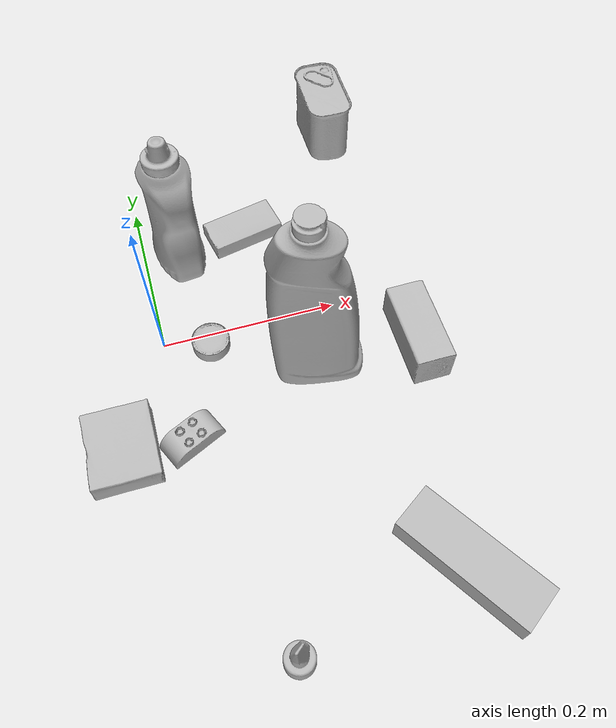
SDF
<sdf version="1.4">
  <world name="default">
    <light name="light1" type="point">
      <pose>0 0 1 0 0 0</pose>
      <diffuse>3 3 3 1</diffuse>
      <specular>3 3 3 1</specular>
    </light>
    <light name="light2" type="point">
      <pose>0 0.5 2 0 0 0</pose>
      <diffuse>1 1 1 1</diffuse>
      <specular>1 1 1 1</specular>
    </light>
    <light name="light3" type="point">
      <pose>0 0.5 2 0 0 0</pose>
      <diffuse>3 3 3 1</diffuse>
      <specular>3 3 3 1</specular>
    </light>
    <scene>
      <ambient>0.7 0.7 0.7</ambient>
    </scene>
    <model name="bottle1">
      <link name="link_bottle1">
        <collision name="default">
          <geometry>
            <mesh>
              <uri>model://bleach_cleanser/collision_meshes/collision.obj</uri>
              <scale>1.0 1.0 1.0</scale>
            </mesh>
          </geometry>
          <surface>
            <friction>
              <ode>
                <mu>0.5</mu>
                <mu2>0.5</mu2>
              </ode>
            </friction>
          <contact>
        <ode>
            <max_vel>0</max_vel>
            <min_depth>0.0001</min_depth>
            <kp>1e8</kp>
        </ode>
    </contact></surface>
        </collision>
        <visual name="default">
          <geometry>
            <mesh>
              <uri>model://bleach_cleanser/visual_meshes/visual.dae</uri>
              <scale>1.0 1.0 1.0</scale>
            </mesh>
          </geometry>
        </visual>
        <inertial>
          <mass>0.5324875712394714</mass>
          <pose>0.00012193183647468686 0.0037838825955986977 -0.024421609938144684 -0.07381669869164166 0.0004201168944593395 -0.0068750469260774934</pose>
          <inertia>
            <ixx>0.0025916947</ixx>
            <iyy>0.0024150796</iyy>
            <izz>0.00044311245</izz>
            <ixy>0</ixy>
            <ixz>0</ixz>
            <iyz>0</iyz>
          </inertia>
        </inertial>
      </link>
      <pose>0.16177216172218323 -0.06553108245134354 0.1258593052625656 -0.00027786032802128906 -0.0028166623693837395 1.4338770971872918</pose>
    </model>
    <model name="bottle2">
      <link name="link_bottle2">
        <collision name="default">
          <geometry>
            <mesh>
              <uri>model://mustard_bottle/collision_meshes/collision.obj</uri>
              <scale>1.0 1.0 1.0</scale>
            </mesh>
          </geometry>
          <surface>
            <friction>
              <ode>
                <mu>0.5</mu>
                <mu2>0.5</mu2>
              </ode>
            </friction>
          <contact>
        <ode>
            <max_vel>0</max_vel>
            <min_depth>0.0001</min_depth>
            <kp>1e8</kp>
        </ode>
    </contact></surface>
        </collision>
        <visual name="default">
          <geometry>
            <mesh>
              <uri>model://mustard_bottle/visual_meshes/visual.dae</uri>
              <scale>1.0 1.0 1.0</scale>
            </mesh>
          </geometry>
        </visual>
        <inertial>
          <mass>0.7762566804885864</mass>
          <pose>0.0005032453336752951 -0.0001564739941386506 -0.01747579127550125 0.0004182320844136383 0.0009465775961192733 0.024853776391442105</pose>
          <inertia>
            <ixx>0.0021555587</ixx>
            <iyy>0.0018913207</iyy>
            <izz>0.00056809856</izz>
            <ixy>0</ixy>
            <ixz>0</ixz>
            <iyz>0</iyz>
          </inertia>
        </inertial>
      </link>
      <pose>0.044139329344034195 0.12442298978567123 0.09583087265491486 -0.012050315698510564 -0.0048903838264096455 -3.030198648428802</pose>
    </model>
    <model name="toy1">
      <link name="link_toy1">
        <collision name="default">
          <geometry>
            <mesh>
              <uri>model://e_toy_airplane/collision_meshes/collision.obj</uri>
              <scale>1.0 1.0 1.0</scale>
            </mesh>
          </geometry>
          <surface>
            <friction>
              <ode>
                <mu>0.5</mu>
                <mu2>0.5</mu2>
              </ode>
            </friction>
          <contact>
        <ode>
            <max_vel>0</max_vel>
            <min_depth>0.0001</min_depth>
            <kp>1e8</kp>
        </ode>
    </contact></surface>
        </collision>
        <visual name="default">
          <geometry>
            <mesh>
              <uri>model://e_toy_airplane/visual_meshes/visual.dae</uri>
              <scale>1.0 1.0 1.0</scale>
            </mesh>
          </geometry>
        </visual>
        <inertial>
          <mass>0.01693064346909523</mass>
          <pose>0.00011740485206246376 -2.2482869098894298e-05 -0.011187203228473663 0.005518486263483037 0.009228306153066855 0.15041416456770357</pose>
          <inertia>
            <ixx>5.1674256e-06</ixx>
            <iyy>5.1145657e-06</iyy>
            <izz>1.5530146e-06</izz>
            <ixy>0</ixy>
            <ixz>0</ixz>
            <iyz>0</iyz>
          </inertia>
        </inertial>
      </link>
      <pose>0.05775392800569534 -0.36112383008003235 0.03321219980716705 6.371894771195408e-05 -9.16472879561978e-05 -1.0628870807683202</pose>
    </model>
    <model name="toy2">
      <link name="link_toy2">
        <collision name="default">
          <geometry>
            <mesh>
              <uri>model://a_lego_duplo/collision_meshes/collision.obj</uri>
              <scale>1.0 1.0 1.0</scale>
            </mesh>
          </geometry>
          <surface>
            <friction>
              <ode>
                <mu>0.5</mu>
                <mu2>0.5</mu2>
              </ode>
            </friction>
          <contact>
        <ode>
            <max_vel>0</max_vel>
            <min_depth>0.0001</min_depth>
            <kp>1e8</kp>
        </ode>
    </contact></surface>
        </collision>
        <visual name="default">
          <geometry>
            <mesh>
              <uri>model://a_lego_duplo/visual_meshes/visual.dae</uri>
              <scale>1.0 1.0 1.0</scale>
            </mesh>
          </geometry>
        </visual>
        <inertial>
          <mass>0.026311658322811127</mass>
          <pose>-0.000113377594971098 0.00018517566786613315 0.0003692609607242048 -0.014117022075399962 -0.00012566465015892618 6.142856652531641e-05</pose>
          <inertia>
            <ixx>3.3733654e-06</ixx>
            <iyy>7.557078e-06</iyy>
            <izz>9.361117e-06</izz>
            <ixy>0</ixy>
            <ixz>0</ixz>
            <iyz>0</iyz>
          </inertia>
        </inertial>
      </link>
      <pose>0.008474924601614475 -0.12294360250234604 0.012111889198422432 4.400012205238476e-06 -8.007026626291955e-07 0.4457630360306546</pose>
    </model>
    <model name="can1">
      <link name="link_can1">
        <collision name="default">
          <geometry>
            <mesh>
              <uri>model://tuna_fish_can/collision_meshes/collision.obj</uri>
              <scale>0.5 0.5 0.5</scale>
            </mesh>
          </geometry>
          <surface>
            <friction>
              <ode>
                <mu>0.5</mu>
                <mu2>0.5</mu2>
              </ode>
            </friction>
          <contact>
        <ode>
            <max_vel>0</max_vel>
            <min_depth>0.0001</min_depth>
            <kp>1e8</kp>
        </ode>
    </contact></surface>
        </collision>
        <visual name="default">
          <geometry>
            <mesh>
              <uri>model://tuna_fish_can/visual_meshes/visual.dae</uri>
              <scale>0.5 0.5 0.5</scale>
            </mesh>
          </geometry>
        </visual>
        <inertial>
          <mass>0.025987863540649414</mass>
          <pose>-2.0361601855256595e-05 -7.256298886204604e-06 -0.0005269025568850338 -0.0017944787689317097 0.0001716279666079131 0.24054509142506303</pose>
          <inertia>
            <ixx>3.5135977e-06</ixx>
            <iyy>3.4989534e-06</iyy>
            <izz>6.0122675e-06</izz>
            <ixy>0</ixy>
            <ixz>0</ixz>
            <iyz>0</iyz>
          </inertia>
        </inertial>
      </link>
      <pose>0.05220373347401619 -0.015479141846299171 0.008519996888935566 1.7145741357696358e-09 1.1848885722281831e-08 -0.020480069429922684</pose>
    </model>
    <model name="can2">
      <link name="link_can2">
        <collision name="default">
          <geometry>
            <mesh>
              <uri>model://potted_meat_can/collision_meshes/collision.obj</uri>
              <scale>1.0 1.0 1.0</scale>
            </mesh>
          </geometry>
          <surface>
            <friction>
              <ode>
                <mu>0.5</mu>
                <mu2>0.5</mu2>
              </ode>
            </friction>
          <contact>
        <ode>
            <max_vel>0</max_vel>
            <min_depth>0.0001</min_depth>
            <kp>1e8</kp>
        </ode>
    </contact></surface>
        </collision>
        <visual name="default">
          <geometry>
            <mesh>
              <uri>model://potted_meat_can/visual_meshes/visual.dae</uri>
              <scale>1.0 1.0 1.0</scale>
            </mesh>
          </geometry>
        </visual>
        <inertial>
          <mass>0.2732236087322235</mass>
          <pose>0.00022888141393195838 -5.989111741655506e-05 -0.0006367441383190453 -0.028093326615163196 -0.007232604646238421 0.015406262399643026</pose>
          <inertia>
            <ixx>0.0003514736</ixx>
            <iyy>0.00021354685</iyy>
            <izz>0.00025563012</izz>
            <ixy>0</ixy>
            <ixz>0</ixz>
            <iyz>0</iyz>
          </inertia>
        </inertial>
      </link>
      <pose>0.27041900157928467 0.2732882797718048 0.042128004133701324 9.941062987919822e-10 -6.67313846865114e-07 3.122356172867989</pose>
    </model>
    <model name="box1">
      <link name="link_box1">
        <collision name="default">
          <geometry>
            <mesh>
              <uri>model://gelatin_box/collision_meshes/collision.obj</uri>
              <scale>1.0 1.0 1.0</scale>
            </mesh>
          </geometry>
          <surface>
            <friction>
              <ode>
                <mu>0.5</mu>
                <mu2>0.5</mu2>
              </ode>
            </friction>
          <contact>
        <ode>
            <max_vel>0</max_vel>
            <min_depth>0.0001</min_depth>
            <kp>1e8</kp>
        </ode>
    </contact></surface>
        </collision>
        <visual name="default">
          <geometry>
            <mesh>
              <uri>model://gelatin_box/visual_meshes/visual.dae</uri>
              <scale>1.0 1.0 1.0</scale>
            </mesh>
          </geometry>
        </visual>
        <inertial>
          <mass>0.14974145591259003</mass>
          <pose>0.0004319618456065655 0.00011156871914863586 -0.0003640321083366871 -0.0010503719798216618 -0.004755819622564704 0.01644055760929568</pose>
          <inertia>
            <ixx>0.00010570526</ixx>
            <iyy>7.550471e-05</iyy>
            <izz>0.00016090693</izz>
            <ixy>0</ixy>
            <ixz>0</ixz>
            <iyz>0</iyz>
          </inertia>
        </inertial>
      </link>
      <pose>-0.06328370422124863 -0.11788652837276459 0.015168317593634129 0.005596407073604884 -0.007303375419681881 3.134420713584188</pose>
    </model>
    <model name="box2">
      <link name="link_box2">
        <collision name="default">
          <geometry>
            <mesh>
              <uri>model://sugar_box/collision_meshes/collision.obj</uri>
              <scale>0.5 0.5 0.5</scale>
            </mesh>
          </geometry>
          <surface>
            <friction>
              <ode>
                <mu>0.5</mu>
                <mu2>0.5</mu2>
              </ode>
            </friction>
          <contact>
        <ode>
            <max_vel>0</max_vel>
            <min_depth>0.0001</min_depth>
            <kp>1e8</kp>
        </ode>
    </contact></surface>
        </collision>
        <visual name="default">
          <geometry>
            <mesh>
              <uri>model://sugar_box/visual_meshes/visual.dae</uri>
              <scale>0.5 0.5 0.5</scale>
            </mesh>
          </geometry>
        </visual>
        <inertial>
          <mass>0.07143953442573547</mass>
          <pose>0.0005171863595023751 1.924554817378521e-05 -0.00018182402709499002 -0.0004046263588767038 0.0010506634057764815 0.0026153785560837986</pose>
          <inertia>
            <ixx>1.4880804e-05</ixx>
            <iyy>4.8097805e-05</iyy>
            <izz>5.757883e-05</izz>
            <ixy>0</ixy>
            <ixz>0</ixz>
            <iyz>0</iyz>
          </inertia>
        </inertial>
      </link>
      <pose>0.12488174438476562 0.13401466608047485 0.011399300768971443 0.0007744268718428162 -0.02343300763243071 0.19127688409613577</pose>
    </model>
    <model name="box3">
      <link name="link_box3">
        <collision name="default">
          <geometry>
            <mesh>
              <uri>model://jenga/collision_meshes/collision.obj</uri>
              <scale>1.0 1.0 1.0</scale>
            </mesh>
          </geometry>
          <surface>
            <friction>
              <ode>
                <mu>0.5</mu>
                <mu2>0.5</mu2>
              </ode>
            </friction>
          <contact>
        <ode>
            <max_vel>0</max_vel>
            <min_depth>0.0001</min_depth>
            <kp>1e8</kp>
        </ode>
    </contact></surface>
        </collision>
        <visual name="default">
          <geometry>
            <mesh>
              <uri>model://jenga/visual_meshes/visual.dae</uri>
              <scale>1.0 1.0 1.0</scale>
            </mesh>
          </geometry>
        </visual>
        <inertial>
          <mass>0.2564851939678192</mass>
          <pose>-2.502855807051674e-07 -0.00010250010382151231 -4.0923401684267446e-05 0.0 -7.342154049184251e-07 0.0</pose>
          <inertia>
            <ixx>7.097568e-05</ixx>
            <iyy>0.00048092927</iyy>
            <izz>0.0005134329</izz>
            <ixy>0</ixy>
            <ixz>0</ixz>
            <iyz>0</iyz>
          </inertia>
        </inertial>
      </link>
      <pose>0.23897068202495575 -0.3241283893585205 0.014999995008111 1.531095457786982e-08 -2.526407662924883e-10 2.146031320415981</pose>
    </model>
    <model name="box4">
      <link name="link_box4">
        <collision name="default">
          <geometry>
            <mesh>
              <uri>model://wood_block/collision_meshes/collision.obj</uri>
              <scale>0.5 0.5 0.5</scale>
            </mesh>
          </geometry>
          <surface>
            <friction>
              <ode>
                <mu>0.5</mu>
                <mu2>0.5</mu2>
              </ode>
            </friction>
          <contact>
        <ode>
            <max_vel>0</max_vel>
            <min_depth>0.0001</min_depth>
            <kp>1e8</kp>
        </ode>
    </contact></surface>
        </collision>
        <visual name="default">
          <geometry>
            <mesh>
              <uri>model://wood_block/visual_meshes/visual.dae</uri>
              <scale>0.5 0.5 0.5</scale>
            </mesh>
          </geometry>
        </visual>
        <inertial>
          <mass>0.2543213665485382</mass>
          <pose>-2.906657982748584e-06 -0.000285404734313488 0.00013204291462898254 -0.05220794665887619 -0.0051926956484831775 -0.006861378561045436</pose>
          <inertia>
            <ixx>8.508011e-05</ixx>
            <iyy>0.00026876814</iyy>
            <izz>0.00026776275</izz>
            <ixy>0</ixy>
            <ixz>0</ixz>
            <iyz>0</iyz>
          </inertia>
        </inertial>
      </link>
      <pose>0.2778867781162262 -0.07476816326379776 0.022629262879490852 -0.005208579637553177 0.005718742911000093 -1.5677023007113289</pose>
    </model>
  <physics type="ode">
      <max_contacts>50</max_contacts>
      <ode>
        <solver>
          <type>quick</type>
          <iters>75</iters>
        </solver>
        <constraints>
          <contact_max_correcting_vel>0</contact_max_correcting_vel>
          <contact_surface_layer>0</contact_surface_layer>
        </constraints>
      </ode>
    </physics></world>
</sdf>
